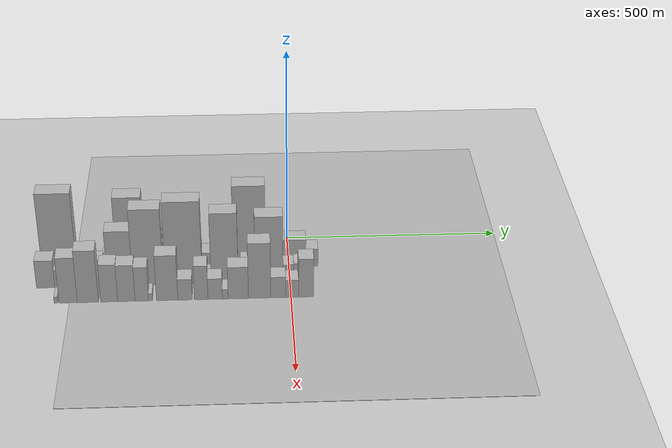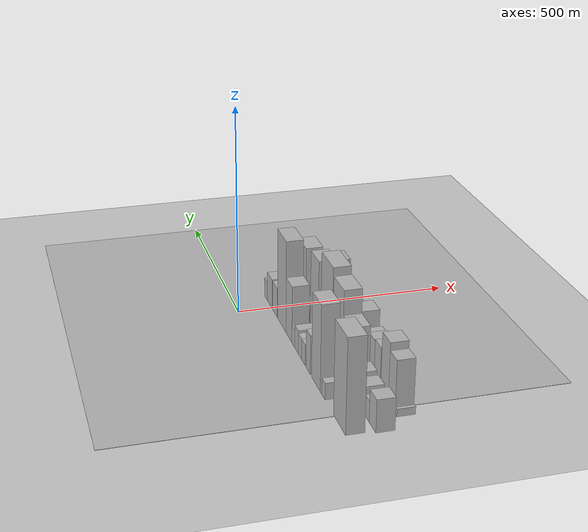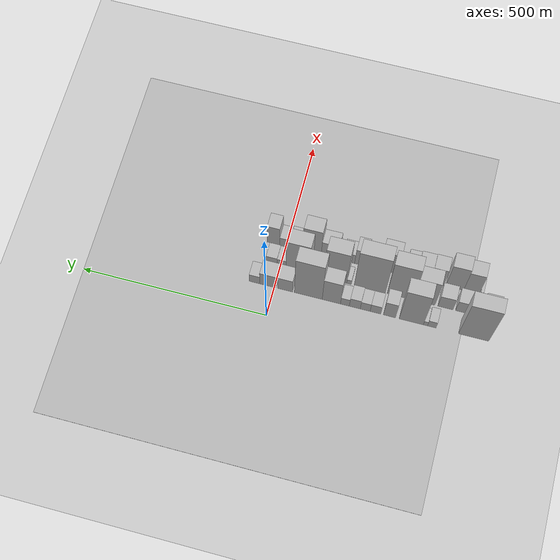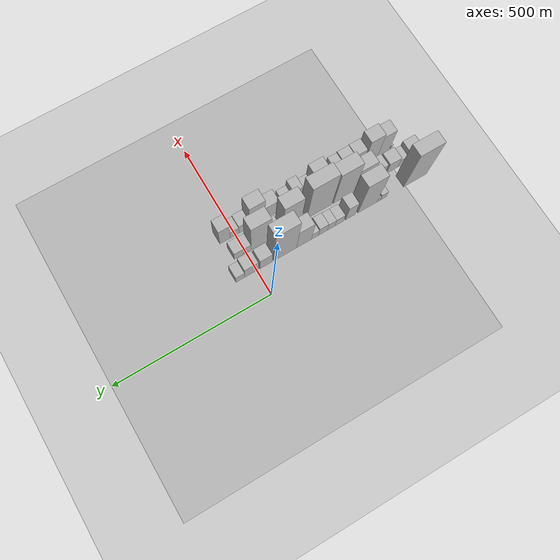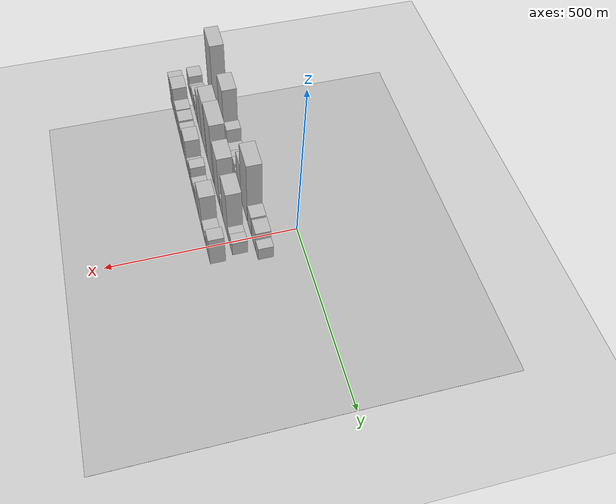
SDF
<sdf version="1.6">
 <world name="default">
  <include><name>ground_plane_1</name><uri>model://HANNAS_ground_plane</uri></include>
  <include>
   <name>ground_plane_2</name>
   <uri>model://HANNAS_ground_plane</uri>
   <pose>100 0 0  0 0 0</pose>
  </include>
  <model name="building_1">
   <static>1</static>
   <pose>100.0000 -533.1704 0 0.000000 0.000000 0.000000</pose>
   <link name="link">
    <pose>0 0 108.00 0 0 0</pose>
    <collision name="collision"><geometry><box><size>40.0000 79.6592 216.0000</size></box></geometry></collision>
    <visual name="visual">
     <cast_shadows>0</cast_shadows>
     <geometry><box><size>40.0000 79.6592 216.0000</size></box></geometry>
     <material>
      <script>
       <uri>model://HANNAS_wall/materials/scripts</uri>
       <uri>model://HANNAS_wall/materials/textures</uri>
       <name>vrc/HANNAS_wall</name>
      </script>
     </material>
    </visual>
   </link>
  </model>
  <model name="building_2">
   <static>1</static>
   <pose>100.0000 -422.7327 0 0.000000 0.000000 0.000000</pose>
   <link name="link">
    <pose>0 0 19.50 0 0 0</pose>
    <collision name="collision"><geometry><box><size>40.0000 22.4054 39.0000</size></box></geometry></collision>
    <visual name="visual">
     <cast_shadows>0</cast_shadows>
     <geometry><box><size>40.0000 22.4054 39.0000</size></box></geometry>
     <material>
      <script>
       <uri>model://HANNAS_wall/materials/scripts</uri>
       <uri>model://HANNAS_wall/materials/textures</uri>
       <name>vrc/HANNAS_wall</name>
      </script>
     </material>
    </visual>
   </link>
  </model>
  <model name="building_3">
   <static>1</static>
   <pose>100.0000 -405.9217 0 0.000000 0.000000 0.000000</pose>
   <link name="link">
    <pose>0 0 13.50 0 0 0</pose>
    <collision name="collision"><geometry><box><size>40.0000 11.2166 27.0000</size></box></geometry></collision>
    <visual name="visual">
     <cast_shadows>0</cast_shadows>
     <geometry><box><size>40.0000 11.2166 27.0000</size></box></geometry>
     <material>
      <script>
       <uri>model://HANNAS_wall/materials/scripts</uri>
       <uri>model://HANNAS_wall/materials/textures</uri>
       <name>vrc/HANNAS_wall</name>
      </script>
     </material>
    </visual>
   </link>
  </model>
  <model name="building_4">
   <static>1</static>
   <pose>100.0000 -368.2056 0 0.000000 0.000000 0.000000</pose>
   <link name="link">
    <pose>0 0 100.50 0 0 0</pose>
    <collision name="collision"><geometry><box><size>40.0000 64.2155 201.0000</size></box></geometry></collision>
    <visual name="visual">
     <cast_shadows>0</cast_shadows>
     <geometry><box><size>40.0000 64.2155 201.0000</size></box></geometry>
     <material>
      <script>
       <uri>model://HANNAS_wall/materials/scripts</uri>
       <uri>model://HANNAS_wall/materials/textures</uri>
       <name>vrc/HANNAS_wall</name>
      </script>
     </material>
    </visual>
   </link>
  </model>
  <model name="building_5">
   <static>1</static>
   <pose>100.0000 -310.0719 0 0.000000 0.000000 0.000000</pose>
   <link name="link">
    <pose>0 0 46.50 0 0 0</pose>
    <collision name="collision"><geometry><box><size>40.0000 32.0519 93.0000</size></box></geometry></collision>
    <visual name="visual">
     <cast_shadows>0</cast_shadows>
     <geometry><box><size>40.0000 32.0519 93.0000</size></box></geometry>
     <material>
      <script>
       <uri>model://HANNAS_wall/materials/scripts</uri>
       <uri>model://HANNAS_wall/materials/textures</uri>
       <name>vrc/HANNAS_wall</name>
      </script>
     </material>
    </visual>
   </link>
  </model>
  <model name="building_6">
   <static>1</static>
   <pose>100.0000 -272.6769 0 0.000000 0.000000 0.000000</pose>
   <link name="link">
    <pose>0 0 25.50 0 0 0</pose>
    <collision name="collision"><geometry><box><size>40.0000 28.7380 51.0000</size></box></geometry></collision>
    <visual name="visual">
     <cast_shadows>0</cast_shadows>
     <geometry><box><size>40.0000 28.7380 51.0000</size></box></geometry>
     <material>
      <script>
       <uri>model://HANNAS_wall/materials/scripts</uri>
       <uri>model://HANNAS_wall/materials/textures</uri>
       <name>vrc/HANNAS_wall</name>
      </script>
     </material>
    </visual>
   </link>
  </model>
  <model name="building_7">
   <static>1</static>
   <pose>100.0000 -245.1332 0 0.000000 0.000000 0.000000</pose>
   <link name="link">
    <pose>0 0 25.50 0 0 0</pose>
    <collision name="collision"><geometry><box><size>40.0000 26.3495 51.0000</size></box></geometry></collision>
    <visual name="visual">
     <cast_shadows>0</cast_shadows>
     <geometry><box><size>40.0000 26.3495 51.0000</size></box></geometry>
     <material>
      <script>
       <uri>model://HANNAS_wall/materials/scripts</uri>
       <uri>model://HANNAS_wall/materials/textures</uri>
       <name>vrc/HANNAS_wall</name>
      </script>
     </material>
    </visual>
   </link>
  </model>
  <model name="building_8">
   <static>1</static>
   <pose>100.0000 -217.3423 0 0.000000 0.000000 0.000000</pose>
   <link name="link">
    <pose>0 0 28.50 0 0 0</pose>
    <collision name="collision"><geometry><box><size>40.0000 29.2323 57.0000</size></box></geometry></collision>
    <visual name="visual">
     <cast_shadows>0</cast_shadows>
     <geometry><box><size>40.0000 29.2323 57.0000</size></box></geometry>
     <material>
      <script>
       <uri>model://HANNAS_wall/materials/scripts</uri>
       <uri>model://HANNAS_wall/materials/textures</uri>
       <name>vrc/HANNAS_wall</name>
      </script>
     </material>
    </visual>
   </link>
  </model>
  <model name="building_9">
   <static>1</static>
   <pose>100.0000 -190.7932 0 0.000000 0.000000 0.000000</pose>
   <link name="link">
    <pose>0 0 22.50 0 0 0</pose>
    <collision name="collision"><geometry><box><size>40.0000 23.8659 45.0000</size></box></geometry></collision>
    <visual name="visual">
     <cast_shadows>0</cast_shadows>
     <geometry><box><size>40.0000 23.8659 45.0000</size></box></geometry>
     <material>
      <script>
       <uri>model://HANNAS_wall/materials/scripts</uri>
       <uri>model://HANNAS_wall/materials/textures</uri>
       <name>vrc/HANNAS_wall</name>
      </script>
     </material>
    </visual>
   </link>
  </model>
  <model name="building_10">
   <static>1</static>
   <pose>100.0000 -154.3311 0 0.000000 0.000000 0.000000</pose>
   <link name="link">
    <pose>0 0 69.00 0 0 0</pose>
    <collision name="collision"><geometry><box><size>40.0000 49.0584 138.0000</size></box></geometry></collision>
    <visual name="visual">
     <cast_shadows>0</cast_shadows>
     <geometry><box><size>40.0000 49.0584 138.0000</size></box></geometry>
     <material>
      <script>
       <uri>model://HANNAS_wall/materials/scripts</uri>
       <uri>model://HANNAS_wall/materials/textures</uri>
       <name>vrc/HANNAS_wall</name>
      </script>
     </material>
    </visual>
   </link>
  </model>
  <model name="building_11">
   <static>1</static>
   <pose>100.0000 -92.2065 0 0.000000 0.000000 0.000000</pose>
   <link name="link">
    <pose>0 0 112.50 0 0 0</pose>
    <collision name="collision"><geometry><box><size>40.0000 75.1906 225.0000</size></box></geometry></collision>
    <visual name="visual">
     <cast_shadows>0</cast_shadows>
     <geometry><box><size>40.0000 75.1906 225.0000</size></box></geometry>
     <material>
      <script>
       <uri>model://HANNAS_wall/materials/scripts</uri>
       <uri>model://HANNAS_wall/materials/textures</uri>
       <name>vrc/HANNAS_wall</name>
      </script>
     </material>
    </visual>
   </link>
  </model>
  <model name="building_12">
   <static>1</static>
   <pose>100.0000 -29.7188 0 0.000000 0.000000 0.000000</pose>
   <link name="link">
    <pose>0 0 37.50 0 0 0</pose>
    <collision name="collision"><geometry><box><size>40.0000 39.7849 75.0000</size></box></geometry></collision>
    <visual name="visual">
     <cast_shadows>0</cast_shadows>
     <geometry><box><size>40.0000 39.7849 75.0000</size></box></geometry>
     <material>
      <script>
       <uri>model://HANNAS_wall/materials/scripts</uri>
       <uri>model://HANNAS_wall/materials/textures</uri>
       <name>vrc/HANNAS_wall</name>
      </script>
     </material>
    </visual>
   </link>
  </model>
  <model name="building_13">
   <static>1</static>
   <pose>100.0000 17.2359 0 0.000000 0.000000 0.000000</pose>
   <link name="link">
    <pose>0 0 37.50 0 0 0</pose>
    <collision name="collision"><geometry><box><size>40.0000 44.1244 75.0000</size></box></geometry></collision>
    <visual name="visual">
     <cast_shadows>0</cast_shadows>
     <geometry><box><size>40.0000 44.1244 75.0000</size></box></geometry>
     <material>
      <script>
       <uri>model://HANNAS_wall/materials/scripts</uri>
       <uri>model://HANNAS_wall/materials/textures</uri>
       <name>vrc/HANNAS_wall</name>
      </script>
     </material>
    </visual>
   </link>
  </model>
  <model name="building_14">
   <static>1</static>
   <pose>100.0000 53.4781 0 0.000000 0.000000 0.000000</pose>
   <link name="link">
    <pose>0 0 24.00 0 0 0</pose>
    <collision name="collision"><geometry><box><size>40.0000 28.3602 48.0000</size></box></geometry></collision>
    <visual name="visual">
     <cast_shadows>0</cast_shadows>
     <geometry><box><size>40.0000 28.3602 48.0000</size></box></geometry>
     <material>
      <script>
       <uri>model://HANNAS_wall/materials/scripts</uri>
       <uri>model://HANNAS_wall/materials/textures</uri>
       <name>vrc/HANNAS_wall</name>
      </script>
     </material>
    </visual>
   </link>
  </model>
  <model name="building_27">
   <static>1</static>
   <pose>160.0000 -559.2378 0 0.000000 0.000000 0.000000</pose>
   <link name="link">
    <pose>0 0 37.50 0 0 0</pose>
    <collision name="collision"><geometry><box><size>40.0000 41.5244 75.0000</size></box></geometry></collision>
    <visual name="visual">
     <cast_shadows>0</cast_shadows>
     <geometry><box><size>40.0000 41.5244 75.0000</size></box></geometry>
     <material>
      <script>
       <uri>model://HANNAS_wall/materials/scripts</uri>
       <uri>model://HANNAS_wall/materials/textures</uri>
       <name>vrc/HANNAS_wall</name>
      </script>
     </material>
    </visual>
   </link>
  </model>
  <model name="building_28">
   <static>1</static>
   <pose>160.0000 -525.4002 0 0.000000 0.000000 0.000000</pose>
   <link name="link">
    <pose>0 0 24.00 0 0 0</pose>
    <collision name="collision"><geometry><box><size>40.0000 26.1507 48.0000</size></box></geometry></collision>
    <visual name="visual">
     <cast_shadows>0</cast_shadows>
     <geometry><box><size>40.0000 26.1507 48.0000</size></box></geometry>
     <material>
      <script>
       <uri>model://HANNAS_wall/materials/scripts</uri>
       <uri>model://HANNAS_wall/materials/textures</uri>
       <name>vrc/HANNAS_wall</name>
      </script>
     </material>
    </visual>
   </link>
  </model>
  <model name="building_29">
   <static>1</static>
   <pose>160.0000 -492.6658 0 0.000000 0.000000 0.000000</pose>
   <link name="link">
    <pose>0 0 33.00 0 0 0</pose>
    <collision name="collision"><geometry><box><size>40.0000 39.3182 66.0000</size></box></geometry></collision>
    <visual name="visual">
     <cast_shadows>0</cast_shadows>
     <geometry><box><size>40.0000 39.3182 66.0000</size></box></geometry>
     <material>
      <script>
       <uri>model://HANNAS_wall/materials/scripts</uri>
       <uri>model://HANNAS_wall/materials/textures</uri>
       <name>vrc/HANNAS_wall</name>
      </script>
     </material>
    </visual>
   </link>
  </model>
  <model name="building_30">
   <static>1</static>
   <pose>160.0000 -445.9524 0 0.000000 0.000000 0.000000</pose>
   <link name="link">
    <pose>0 0 36.00 0 0 0</pose>
    <collision name="collision"><geometry><box><size>40.0000 40.1085 72.0000</size></box></geometry></collision>
    <visual name="visual">
     <cast_shadows>0</cast_shadows>
     <geometry><box><size>40.0000 40.1085 72.0000</size></box></geometry>
     <material>
      <script>
       <uri>model://HANNAS_wall/materials/scripts</uri>
       <uri>model://HANNAS_wall/materials/textures</uri>
       <name>vrc/HANNAS_wall</name>
      </script>
     </material>
    </visual>
   </link>
  </model>
  <model name="building_31">
   <static>1</static>
   <pose>160.0000 -389.2653 0 0.000000 0.000000 0.000000</pose>
   <link name="link">
    <pose>0 0 75.00 0 0 0</pose>
    <collision name="collision"><geometry><box><size>40.0000 57.2656 150.0000</size></box></geometry></collision>
    <visual name="visual">
     <cast_shadows>0</cast_shadows>
     <geometry><box><size>40.0000 57.2656 150.0000</size></box></geometry>
     <material>
      <script>
       <uri>model://HANNAS_wall/materials/scripts</uri>
       <uri>model://HANNAS_wall/materials/textures</uri>
       <name>vrc/HANNAS_wall</name>
      </script>
     </material>
    </visual>
   </link>
  </model>
  <model name="building_32">
   <static>1</static>
   <pose>160.0000 -325.5553 0 0.000000 0.000000 0.000000</pose>
   <link name="link">
    <pose>0 0 103.50 0 0 0</pose>
    <collision name="collision"><geometry><box><size>40.0000 70.1543 207.0000</size></box></geometry></collision>
    <visual name="visual">
     <cast_shadows>0</cast_shadows>
     <geometry><box><size>40.0000 70.1543 207.0000</size></box></geometry>
     <material>
      <script>
       <uri>model://HANNAS_wall/materials/scripts</uri>
       <uri>model://HANNAS_wall/materials/textures</uri>
       <name>vrc/HANNAS_wall</name>
      </script>
     </material>
    </visual>
   </link>
  </model>
  <model name="building_33">
   <static>1</static>
   <pose>160.0000 -243.4964 0 0.000000 0.000000 0.000000</pose>
   <link name="link">
    <pose>0 0 112.50 0 0 0</pose>
    <collision name="collision"><geometry><box><size>40.0000 83.9636 225.0000</size></box></geometry></collision>
    <visual name="visual">
     <cast_shadows>0</cast_shadows>
     <geometry><box><size>40.0000 83.9636 225.0000</size></box></geometry>
     <material>
      <script>
       <uri>model://HANNAS_wall/materials/scripts</uri>
       <uri>model://HANNAS_wall/materials/textures</uri>
       <name>vrc/HANNAS_wall</name>
      </script>
     </material>
    </visual>
   </link>
  </model>
  <model name="building_34">
   <static>1</static>
   <pose>160.0000 -187.3858 0 0.000000 0.000000 0.000000</pose>
   <link name="link">
    <pose>0 0 13.50 0 0 0</pose>
    <collision name="collision"><geometry><box><size>40.0000 12.2575 27.0000</size></box></geometry></collision>
    <visual name="visual">
     <cast_shadows>0</cast_shadows>
     <geometry><box><size>40.0000 12.2575 27.0000</size></box></geometry>
     <material>
      <script>
       <uri>model://HANNAS_wall/materials/scripts</uri>
       <uri>model://HANNAS_wall/materials/textures</uri>
       <name>vrc/HANNAS_wall</name>
      </script>
     </material>
    </visual>
   </link>
  </model>
  <model name="building_35">
   <static>1</static>
   <pose>160.0000 -150.2522 0 0.000000 0.000000 0.000000</pose>
   <link name="link">
    <pose>0 0 96.00 0 0 0</pose>
    <collision name="collision"><geometry><box><size>40.0000 62.0097 192.0000</size></box></geometry></collision>
    <visual name="visual">
     <cast_shadows>0</cast_shadows>
     <geometry><box><size>40.0000 62.0097 192.0000</size></box></geometry>
     <material>
      <script>
       <uri>model://HANNAS_wall/materials/scripts</uri>
       <uri>model://HANNAS_wall/materials/textures</uri>
       <name>vrc/HANNAS_wall</name>
      </script>
     </material>
    </visual>
   </link>
  </model>
  <model name="building_36">
   <static>1</static>
   <pose>160.0000 -96.7051 0 0.000000 0.000000 0.000000</pose>
   <link name="link">
    <pose>0 0 30.00 0 0 0</pose>
    <collision name="collision"><geometry><box><size>40.0000 33.0845 60.0000</size></box></geometry></collision>
    <visual name="visual">
     <cast_shadows>0</cast_shadows>
     <geometry><box><size>40.0000 33.0845 60.0000</size></box></geometry>
     <material>
      <script>
       <uri>model://HANNAS_wall/materials/scripts</uri>
       <uri>model://HANNAS_wall/materials/textures</uri>
       <name>vrc/HANNAS_wall</name>
      </script>
     </material>
    </visual>
   </link>
  </model>
  <model name="building_37">
   <static>1</static>
   <pose>160.0000 -48.1493 0 0.000000 0.000000 0.000000</pose>
   <link name="link">
    <pose>0 0 90.00 0 0 0</pose>
    <collision name="collision"><geometry><box><size>40.0000 64.0271 180.0000</size></box></geometry></collision>
    <visual name="visual">
     <cast_shadows>0</cast_shadows>
     <geometry><box><size>40.0000 64.0271 180.0000</size></box></geometry>
     <material>
      <script>
       <uri>model://HANNAS_wall/materials/scripts</uri>
       <uri>model://HANNAS_wall/materials/textures</uri>
       <name>vrc/HANNAS_wall</name>
      </script>
     </material>
    </visual>
   </link>
  </model>
  <model name="building_38">
   <static>1</static>
   <pose>160.0000 -3.9642 0 0.000000 0.000000 0.000000</pose>
   <link name="link">
    <pose>0 0 24.00 0 0 0</pose>
    <collision name="collision"><geometry><box><size>40.0000 24.3431 48.0000</size></box></geometry></collision>
    <visual name="visual">
     <cast_shadows>0</cast_shadows>
     <geometry><box><size>40.0000 24.3431 48.0000</size></box></geometry>
     <material>
      <script>
       <uri>model://HANNAS_wall/materials/scripts</uri>
       <uri>model://HANNAS_wall/materials/textures</uri>
       <name>vrc/HANNAS_wall</name>
      </script>
     </material>
    </visual>
   </link>
  </model>
  <model name="building_39">
   <static>1</static>
   <pose>160.0000 23.2347 0 0.000000 0.000000 0.000000</pose>
   <link name="link">
    <pose>0 0 25.50 0 0 0</pose>
    <collision name="collision"><geometry><box><size>40.0000 30.0547 51.0000</size></box></geometry></collision>
    <visual name="visual">
     <cast_shadows>0</cast_shadows>
     <geometry><box><size>40.0000 30.0547 51.0000</size></box></geometry>
     <material>
      <script>
       <uri>model://HANNAS_wall/materials/scripts</uri>
       <uri>model://HANNAS_wall/materials/textures</uri>
       <name>vrc/HANNAS_wall</name>
      </script>
     </material>
    </visual>
   </link>
  </model>
  <model name="building_55">
   <static>1</static>
   <pose>220.0000 -530.0269 0 0.000000 0.000000 0.000000</pose>
   <link name="link">
    <pose>0 0 9.00 0 0 0</pose>
    <collision name="collision"><geometry><box><size>40.0000 7.9821 18.0000</size></box></geometry></collision>
    <visual name="visual">
     <cast_shadows>0</cast_shadows>
     <geometry><box><size>40.0000 7.9821 18.0000</size></box></geometry>
     <material>
      <script>
       <uri>model://HANNAS_wall/materials/scripts</uri>
       <uri>model://HANNAS_wall/materials/textures</uri>
       <name>vrc/HANNAS_wall</name>
      </script>
     </material>
    </visual>
   </link>
  </model>
  <model name="building_56">
   <static>1</static>
   <pose>220.0000 -502.4890 0 0.000000 0.000000 0.000000</pose>
   <link name="link">
    <pose>0 0 61.50 0 0 0</pose>
    <collision name="collision"><geometry><box><size>40.0000 41.0937 123.0000</size></box></geometry></collision>
    <visual name="visual">
     <cast_shadows>0</cast_shadows>
     <geometry><box><size>40.0000 41.0937 123.0000</size></box></geometry>
     <material>
      <script>
       <uri>model://HANNAS_wall/materials/scripts</uri>
       <uri>model://HANNAS_wall/materials/textures</uri>
       <name>vrc/HANNAS_wall</name>
      </script>
     </material>
    </visual>
   </link>
  </model>
  <model name="building_57">
   <static>1</static>
   <pose>220.0000 -458.2205 0 0.000000 0.000000 0.000000</pose>
   <link name="link">
    <pose>0 0 70.50 0 0 0</pose>
    <collision name="collision"><geometry><box><size>40.0000 47.4434 141.0000</size></box></geometry></collision>
    <visual name="visual">
     <cast_shadows>0</cast_shadows>
     <geometry><box><size>40.0000 47.4434 141.0000</size></box></geometry>
     <material>
      <script>
       <uri>model://HANNAS_wall/materials/scripts</uri>
       <uri>model://HANNAS_wall/materials/textures</uri>
       <name>vrc/HANNAS_wall</name>
      </script>
     </material>
    </visual>
   </link>
  </model>
  <model name="building_58">
   <static>1</static>
   <pose>220.0000 -410.4309 0 0.000000 0.000000 0.000000</pose>
   <link name="link">
    <pose>0 0 51.00 0 0 0</pose>
    <collision name="collision"><geometry><box><size>40.0000 38.1357 102.0000</size></box></geometry></collision>
    <visual name="visual">
     <cast_shadows>0</cast_shadows>
     <geometry><box><size>40.0000 38.1357 102.0000</size></box></geometry>
     <material>
      <script>
       <uri>model://HANNAS_wall/materials/scripts</uri>
       <uri>model://HANNAS_wall/materials/textures</uri>
       <name>vrc/HANNAS_wall</name>
      </script>
     </material>
    </visual>
   </link>
  </model>
  <model name="building_59">
   <static>1</static>
   <pose>220.0000 -371.8674 0 0.000000 0.000000 0.000000</pose>
   <link name="link">
    <pose>0 0 49.50 0 0 0</pose>
    <collision name="collision"><geometry><box><size>40.0000 38.9912 99.0000</size></box></geometry></collision>
    <visual name="visual">
     <cast_shadows>0</cast_shadows>
     <geometry><box><size>40.0000 38.9912 99.0000</size></box></geometry>
     <material>
      <script>
       <uri>model://HANNAS_wall/materials/scripts</uri>
       <uri>model://HANNAS_wall/materials/textures</uri>
       <name>vrc/HANNAS_wall</name>
      </script>
     </material>
    </visual>
   </link>
  </model>
  <model name="building_60">
   <static>1</static>
   <pose>220.0000 -337.1513 0 0.000000 0.000000 0.000000</pose>
   <link name="link">
    <pose>0 0 46.50 0 0 0</pose>
    <collision name="collision"><geometry><box><size>40.0000 30.4411 93.0000</size></box></geometry></collision>
    <visual name="visual">
     <cast_shadows>0</cast_shadows>
     <geometry><box><size>40.0000 30.4411 93.0000</size></box></geometry>
     <material>
      <script>
       <uri>model://HANNAS_wall/materials/scripts</uri>
       <uri>model://HANNAS_wall/materials/textures</uri>
       <name>vrc/HANNAS_wall</name>
      </script>
     </material>
    </visual>
   </link>
  </model>
  <model name="building_61">
   <static>1</static>
   <pose>220.0000 -317.5096 0 0.000000 0.000000 0.000000</pose>
   <link name="link">
    <pose>0 0 10.50 0 0 0</pose>
    <collision name="collision"><geometry><box><size>40.0000 8.8423 21.0000</size></box></geometry></collision>
    <visual name="visual">
     <cast_shadows>0</cast_shadows>
     <geometry><box><size>40.0000 8.8423 21.0000</size></box></geometry>
     <material>
      <script>
       <uri>model://HANNAS_wall/materials/scripts</uri>
       <uri>model://HANNAS_wall/materials/textures</uri>
       <name>vrc/HANNAS_wall</name>
      </script>
     </material>
    </visual>
   </link>
  </model>
  <model name="building_62">
   <static>1</static>
   <pose>220.0000 -279.9840 0 0.000000 0.000000 0.000000</pose>
   <link name="link">
    <pose>0 0 61.50 0 0 0</pose>
    <collision name="collision"><geometry><box><size>40.0000 48.2088 123.0000</size></box></geometry></collision>
    <visual name="visual">
     <cast_shadows>0</cast_shadows>
     <geometry><box><size>40.0000 48.2088 123.0000</size></box></geometry>
     <material>
      <script>
       <uri>model://HANNAS_wall/materials/scripts</uri>
       <uri>model://HANNAS_wall/materials/textures</uri>
       <name>vrc/HANNAS_wall</name>
      </script>
     </material>
    </visual>
   </link>
  </model>
  <model name="building_63">
   <static>1</static>
   <pose>220.0000 -239.7315 0 0.000000 0.000000 0.000000</pose>
   <link name="link">
    <pose>0 0 28.50 0 0 0</pose>
    <collision name="collision"><geometry><box><size>40.0000 32.2962 57.0000</size></box></geometry></collision>
    <visual name="visual">
     <cast_shadows>0</cast_shadows>
     <geometry><box><size>40.0000 32.2962 57.0000</size></box></geometry>
     <material>
      <script>
       <uri>model://HANNAS_wall/materials/scripts</uri>
       <uri>model://HANNAS_wall/materials/textures</uri>
       <name>vrc/HANNAS_wall</name>
      </script>
     </material>
    </visual>
   </link>
  </model>
  <model name="building_64">
   <static>1</static>
   <pose>220.0000 -203.2848 0 0.000000 0.000000 0.000000</pose>
   <link name="link">
    <pose>0 0 46.50 0 0 0</pose>
    <collision name="collision"><geometry><box><size>40.0000 30.5972 93.0000</size></box></geometry></collision>
    <visual name="visual">
     <cast_shadows>0</cast_shadows>
     <geometry><box><size>40.0000 30.5972 93.0000</size></box></geometry>
     <material>
      <script>
       <uri>model://HANNAS_wall/materials/scripts</uri>
       <uri>model://HANNAS_wall/materials/textures</uri>
       <name>vrc/HANNAS_wall</name>
      </script>
     </material>
    </visual>
   </link>
  </model>
  <model name="building_65">
   <static>1</static>
   <pose>220.0000 -171.6425 0 0.000000 0.000000 0.000000</pose>
   <link name="link">
    <pose>0 0 28.50 0 0 0</pose>
    <collision name="collision"><geometry><box><size>40.0000 32.6874 57.0000</size></box></geometry></collision>
    <visual name="visual">
     <cast_shadows>0</cast_shadows>
     <geometry><box><size>40.0000 32.6874 57.0000</size></box></geometry>
     <material>
      <script>
       <uri>model://HANNAS_wall/materials/scripts</uri>
       <uri>model://HANNAS_wall/materials/textures</uri>
       <name>vrc/HANNAS_wall</name>
      </script>
     </material>
    </visual>
   </link>
  </model>
  <model name="building_66">
   <static>1</static>
   <pose>220.0000 -148.9586 0 0.000000 0.000000 0.000000</pose>
   <link name="link">
    <pose>0 0 13.50 0 0 0</pose>
    <collision name="collision"><geometry><box><size>40.0000 12.6804 27.0000</size></box></geometry></collision>
    <visual name="visual">
     <cast_shadows>0</cast_shadows>
     <geometry><box><size>40.0000 12.6804 27.0000</size></box></geometry>
     <material>
      <script>
       <uri>model://HANNAS_wall/materials/scripts</uri>
       <uri>model://HANNAS_wall/materials/textures</uri>
       <name>vrc/HANNAS_wall</name>
      </script>
     </material>
    </visual>
   </link>
  </model>
  <model name="building_67">
   <static>1</static>
   <pose>220.0000 -119.6957 0 0.000000 0.000000 0.000000</pose>
   <link name="link">
    <pose>0 0 43.50 0 0 0</pose>
    <collision name="collision"><geometry><box><size>40.0000 45.8455 87.0000</size></box></geometry></collision>
    <visual name="visual">
     <cast_shadows>0</cast_shadows>
     <geometry><box><size>40.0000 45.8455 87.0000</size></box></geometry>
     <material>
      <script>
       <uri>model://HANNAS_wall/materials/scripts</uri>
       <uri>model://HANNAS_wall/materials/textures</uri>
       <name>vrc/HANNAS_wall</name>
      </script>
     </material>
    </visual>
   </link>
  </model>
  <model name="building_68">
   <static>1</static>
   <pose>220.0000 -71.4196 0 0.000000 0.000000 0.000000</pose>
   <link name="link">
    <pose>0 0 75.00 0 0 0</pose>
    <collision name="collision"><geometry><box><size>40.0000 50.7066 150.0000</size></box></geometry></collision>
    <visual name="visual">
     <cast_shadows>0</cast_shadows>
     <geometry><box><size>40.0000 50.7066 150.0000</size></box></geometry>
     <material>
      <script>
       <uri>model://HANNAS_wall/materials/scripts</uri>
       <uri>model://HANNAS_wall/materials/textures</uri>
       <name>vrc/HANNAS_wall</name>
      </script>
     </material>
    </visual>
   </link>
  </model>
  <model name="building_69">
   <static>1</static>
   <pose>220.0000 -28.9888 0 0.000000 0.000000 0.000000</pose>
   <link name="link">
    <pose>0 0 28.50 0 0 0</pose>
    <collision name="collision"><geometry><box><size>40.0000 34.1549 57.0000</size></box></geometry></collision>
    <visual name="visual">
     <cast_shadows>0</cast_shadows>
     <geometry><box><size>40.0000 34.1549 57.0000</size></box></geometry>
     <material>
      <script>
       <uri>model://HANNAS_wall/materials/scripts</uri>
       <uri>model://HANNAS_wall/materials/textures</uri>
       <name>vrc/HANNAS_wall</name>
      </script>
     </material>
    </visual>
   </link>
  </model>
  <model name="building_70">
   <static>1</static>
   <pose>220.0000 2.4636 0 0.000000 0.000000 0.000000</pose>
   <link name="link">
    <pose>0 0 24.00 0 0 0</pose>
    <collision name="collision"><geometry><box><size>40.0000 28.7500 48.0000</size></box></geometry></collision>
    <visual name="visual">
     <cast_shadows>0</cast_shadows>
     <geometry><box><size>40.0000 28.7500 48.0000</size></box></geometry>
     <material>
      <script>
       <uri>model://HANNAS_wall/materials/scripts</uri>
       <uri>model://HANNAS_wall/materials/textures</uri>
       <name>vrc/HANNAS_wall</name>
      </script>
     </material>
    </visual>
   </link>
  </model>
  <model name="building_71">
   <static>1</static>
   <pose>220.0000 33.8973 0 0.000000 0.000000 0.000000</pose>
   <link name="link">
    <pose>0 0 52.50 0 0 0</pose>
    <collision name="collision"><geometry><box><size>40.0000 34.1172 105.0000</size></box></geometry></collision>
    <visual name="visual">
     <cast_shadows>0</cast_shadows>
     <geometry><box><size>40.0000 34.1172 105.0000</size></box></geometry>
     <material>
      <script>
       <uri>model://HANNAS_wall/materials/scripts</uri>
       <uri>model://HANNAS_wall/materials/textures</uri>
       <name>vrc/HANNAS_wall</name>
      </script>
     </material>
    </visual>
   </link>
  </model>
 </world>
</sdf>
